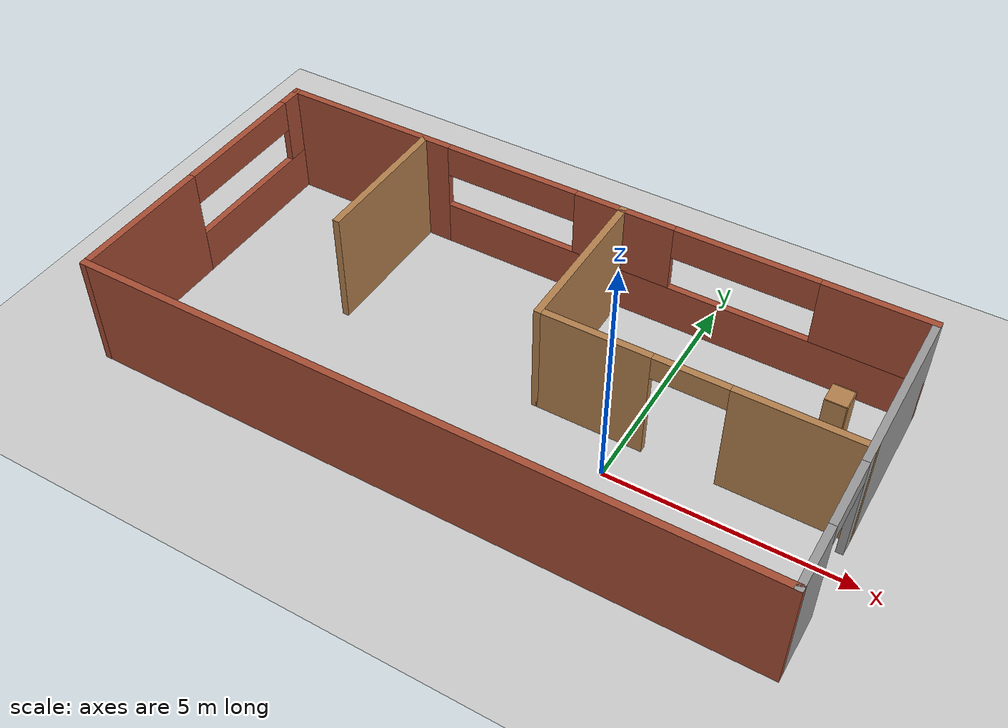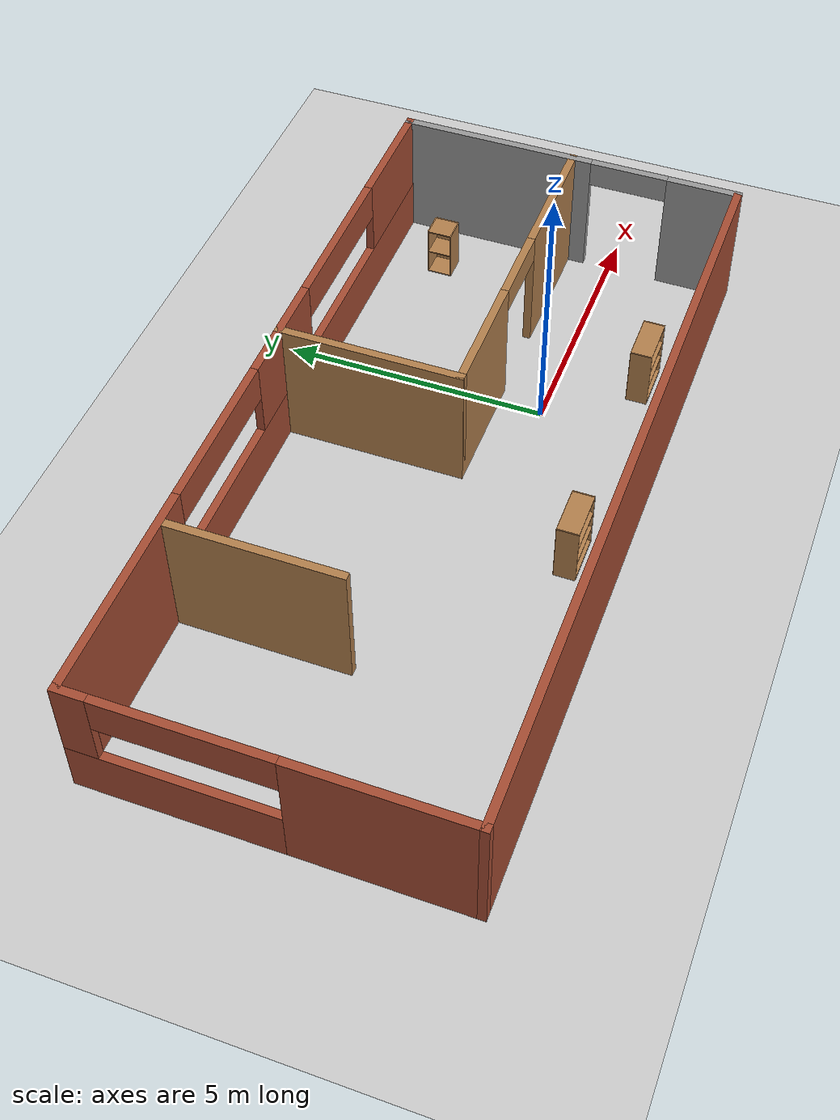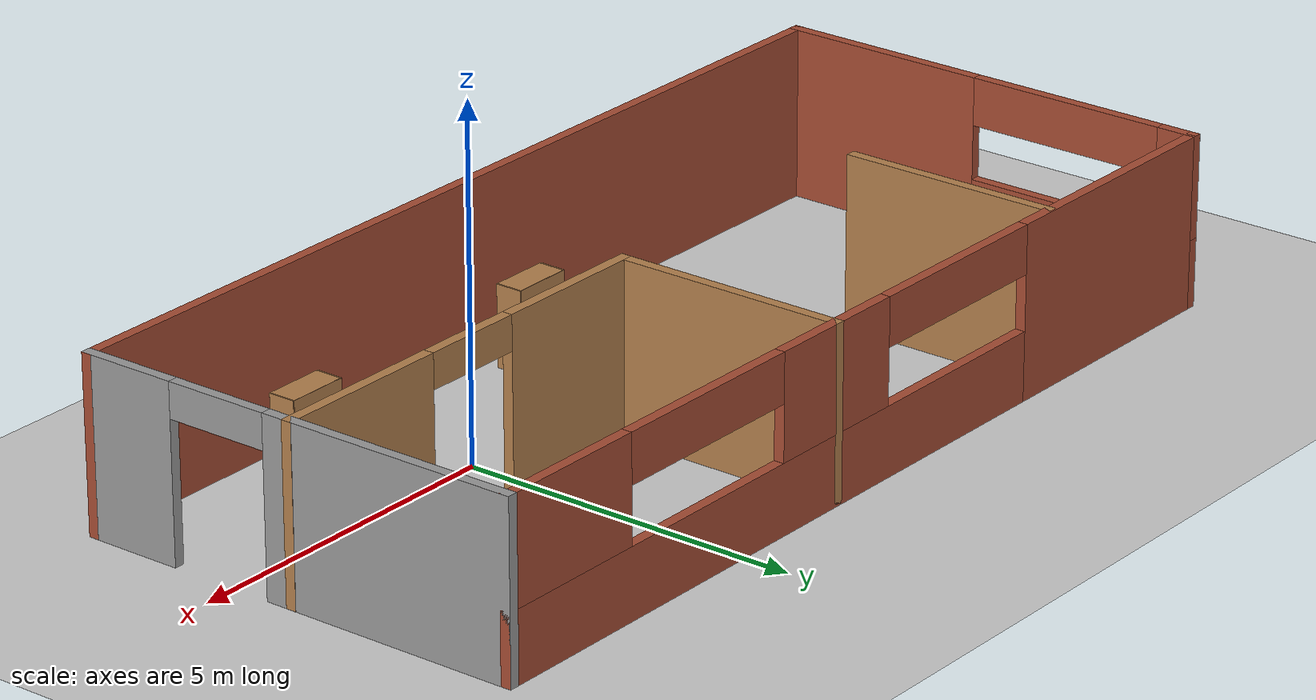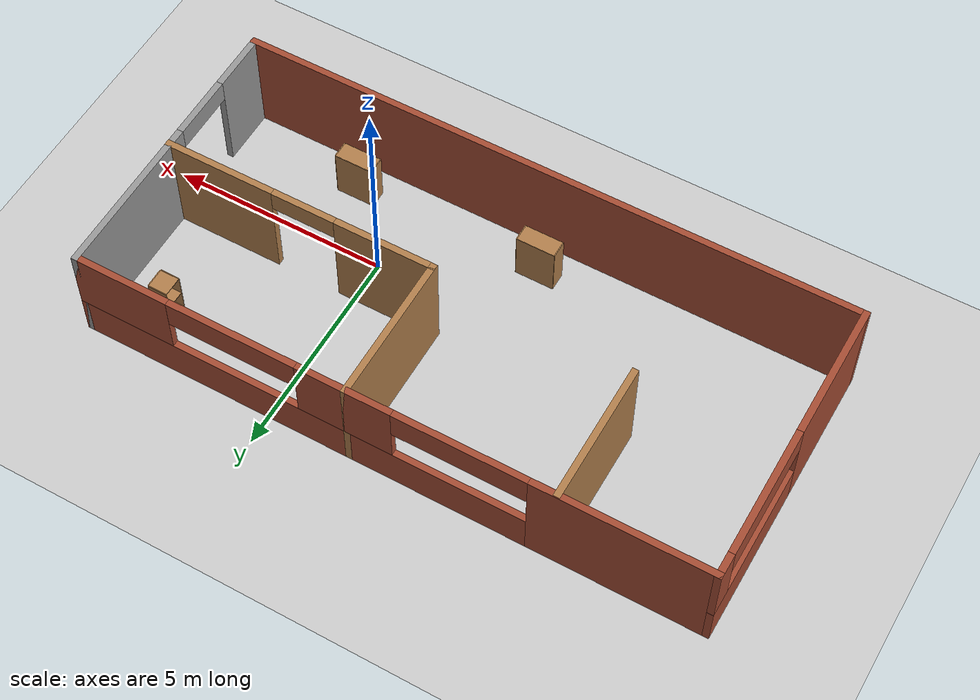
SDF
<sdf version="1.6">
 <world name="default">
  <light name="sun" type="directional">
   <pose>0 0 10 0 -0 0</pose>
   <diffuse>0.8 0.8 0.8 1</diffuse>
   <specular>0.2 0.2 0.2 1</specular>
   <attenuation>
    <range>1000</range>
    <constant>0.9</constant>
    <linear>0.01</linear>
    <quadratic>0.001</quadratic>
   </attenuation>
   <direction>-0.5 0.1 -0.9</direction>
  </light>
  <model name="ground_plane">
   <static>1</static>
   <link name="link">
    <collision name="collision">
     <geometry><plane><normal>0 0 1</normal><size>100 100</size></plane></geometry>
     <surface>
      <contact><collide_bitmask>65535</collide_bitmask></contact>
      <friction><ode><mu>100</mu><mu2>50</mu2></ode></friction>
     </surface>
    </collision>
    <visual name="visual">
     <cast_shadows>0</cast_shadows>
     <geometry><plane><normal>0 0 1</normal><size>100 100</size></plane></geometry>
     <material>
      <script><uri>file://media/materials/scripts/gazebo.material</uri><name>Gazebo/Grey</name></script>
     </material>
    </visual>
   </link>
  </model>
  <gravity>0 0 -9.8</gravity>
  <magnetic_field>6e-06 2.3e-05 -4.2e-05</magnetic_field>
  <atmosphere type="adiabatic"/>
  <physics name="default_physics" default="0" type="ode">
   <max_step_size>0.001</max_step_size>
   <real_time_factor>1</real_time_factor>
   <real_time_update_rate>1000</real_time_update_rate>
  </physics>
  <scene><ambient>0.4 0.4 0.4 1</ambient><background>0.7 0.7 0.7 1</background><shadows>1</shadows></scene>
  <spherical_coordinates>
   <surface_model>EARTH_WGS84</surface_model>
   <latitude_deg>0</latitude_deg>
   <longitude_deg>0</longitude_deg>
   <elevation>0</elevation>
   <heading_deg>0</heading_deg>
  </spherical_coordinates>
  <model name="MyBuilding1">
   <pose>-2.7482 0.962752 0 0 -0 0</pose>
   <link name="Wall_12">
    <pose>-0.001595 3.3 0 0 -0 0</pose>
    <visual name="Wall_12_Visual_0">
     <pose>-5.23309 0 1.25 0 -0 0</pose>
     <geometry><box><size>4.03382 0.15 2.5</size></box></geometry>
     <material>
      <script><uri>file://media/materials/scripts/gazebo.material</uri><name>Gazebo/Bricks</name></script>
      <ambient>1 1 1 1</ambient>
     </material>
     <meta><layer>0</layer></meta>
    </visual>
    <collision name="Wall_12_Collision_0">
     <geometry><box><size>4.03382 0.15 2.5</size></box></geometry>
     <pose>-5.23309 0 1.25 0 -0 0</pose>
    </collision>
    <visual name="Wall_12_Visual_1">
     <pose>2.01691 0 0.5 0 -0 0</pose>
     <geometry><box><size>10.4662 0.15 1</size></box></geometry>
     <material>
      <script><uri>file://media/materials/scripts/gazebo.material</uri><name>Gazebo/Bricks</name></script>
      <ambient>1 1 1 1</ambient>
     </material>
     <meta><layer>0</layer></meta>
    </visual>
    <collision name="Wall_12_Collision_1">
     <geometry><box><size>10.4662 0.15 1</size></box></geometry>
     <pose>2.01691 0 0.5 0 -0 0</pose>
    </collision>
    <visual name="Wall_12_Visual_2">
     <pose>0.874452 0 1.75 0 -0 0</pose>
     <geometry><box><size>2.18126 0.15 1.5</size></box></geometry>
     <material>
      <script><uri>file://media/materials/scripts/gazebo.material</uri><name>Gazebo/Bricks</name></script>
      <ambient>1 1 1 1</ambient>
     </material>
     <meta><layer>0</layer></meta>
    </visual>
    <collision name="Wall_12_Collision_2">
     <geometry><box><size>2.18126 0.15 1.5</size></box></geometry>
     <pose>0.874452 0 1.75 0 -0 0</pose>
    </collision>
    <visual name="Wall_12_Visual_3">
     <pose>6.10754 0 1.75 0 -0 0</pose>
     <geometry><box><size>2.28492 0.15 1.5</size></box></geometry>
     <material>
      <script><uri>file://media/materials/scripts/gazebo.material</uri><name>Gazebo/Bricks</name></script>
      <ambient>1 1 1 1</ambient>
     </material>
     <meta><layer>0</layer></meta>
    </visual>
    <collision name="Wall_12_Collision_3">
     <geometry><box><size>2.28492 0.15 1.5</size></box></geometry>
     <pose>6.10754 0 1.75 0 -0 0</pose>
    </collision>
    <visual name="Wall_12_Visual_4">
     <pose>-1.71618 0 2.15 0 -0 0</pose>
     <geometry><box><size>3 0.15 0.7</size></box></geometry>
     <material>
      <script><uri>file://media/materials/scripts/gazebo.material</uri><name>Gazebo/Bricks</name></script>
      <ambient>1 1 1 1</ambient>
     </material>
     <meta><layer>0</layer></meta>
    </visual>
    <collision name="Wall_12_Collision_4">
     <geometry><box><size>3 0.15 0.7</size></box></geometry>
     <pose>-1.71618 0 2.15 0 -0 0</pose>
    </collision>
    <visual name="Wall_12_Visual_5">
     <pose>3.46508 0 2.15 0 -0 0</pose>
     <geometry><box><size>3 0.15 0.7</size></box></geometry>
     <material>
      <script><uri>file://media/materials/scripts/gazebo.material</uri><name>Gazebo/Bricks</name></script>
      <ambient>1 1 1 1</ambient>
     </material>
     <meta><layer>0</layer></meta>
    </visual>
    <collision name="Wall_12_Collision_5">
     <geometry><box><size>3 0.15 0.7</size></box></geometry>
     <pose>3.46508 0 2.15 0 -0 0</pose>
    </collision>
   </link>
   <link name="Wall_13">
    <pose>7.1734 0 0 0 0 -1.5708</pose>
    <visual name="Wall_13_Visual_0">
     <pose>-1.46883 0 1.25 0 -0 0</pose>
     <geometry><box><size>3.81234 0.15 2.5</size></box></geometry>
     <material>
      <script><uri>file://media/materials/scripts/gazebo.material</uri><name>Gazebo/Grey</name></script>
      <ambient>1 1 1 1</ambient>
     </material>
     <meta><layer>0</layer></meta>
    </visual>
    <collision name="Wall_13_Collision_0">
     <geometry><box><size>3.81234 0.15 2.5</size></box></geometry>
     <pose>-1.46883 0 1.25 0 -0 0</pose>
    </collision>
    <visual name="Wall_13_Visual_1">
     <pose>2.65617 0 1.25 0 -0 0</pose>
     <geometry><box><size>1.43766 0.15 2.5</size></box></geometry>
     <material>
      <script><uri>file://media/materials/scripts/gazebo.material</uri><name>Gazebo/Grey</name></script>
      <ambient>1 1 1 1</ambient>
     </material>
     <meta><layer>0</layer></meta>
    </visual>
    <collision name="Wall_13_Collision_1">
     <geometry><box><size>1.43766 0.15 2.5</size></box></geometry>
     <pose>2.65617 0 1.25 0 -0 0</pose>
    </collision>
    <visual name="Wall_13_Visual_2">
     <pose>1.18734 0 2.25 0 -0 0</pose>
     <geometry><box><size>1.5 0.15 0.5</size></box></geometry>
     <material>
      <script><uri>file://media/materials/scripts/gazebo.material</uri><name>Gazebo/Grey</name></script>
      <ambient>1 1 1 1</ambient>
     </material>
     <meta><layer>0</layer></meta>
    </visual>
    <collision name="Wall_13_Collision_2">
     <geometry><box><size>1.5 0.15 0.5</size></box></geometry>
     <pose>1.18734 0 2.25 0 -0 0</pose>
    </collision>
   </link>
   <link name="Wall_14">
    <collision name="Wall_14_Collision">
     <geometry><box><size>14.5 0.15 2.5</size></box></geometry>
     <pose>0 0 1.25 0 -0 0</pose>
    </collision>
    <visual name="Wall_14_Visual">
     <pose>0 0 1.25 0 -0 0</pose>
     <geometry><box><size>14.5 0.15 2.5</size></box></geometry>
     <material>
      <script><uri>file://media/materials/scripts/gazebo.material</uri><name>Gazebo/Bricks</name></script>
      <ambient>1 1 1 1</ambient>
     </material>
     <meta><layer>0</layer></meta>
    </visual>
    <pose>-0.001595 -3.3 0 0 -0 3.14159</pose>
   </link>
   <link name="Wall_15">
    <pose>-7.17659 0 0 0 -0 1.5708</pose>
    <visual name="Wall_15_Visual_0">
     <pose>-1.79368 0 1.25 0 -0 0</pose>
     <geometry><box><size>3.16264 0.15 2.5</size></box></geometry>
     <material>
      <script><uri>file://media/materials/scripts/gazebo.material</uri><name>Gazebo/Bricks</name></script>
      <ambient>1 1 1 1</ambient>
     </material>
     <meta><layer>0</layer></meta>
    </visual>
    <collision name="Wall_15_Collision_0">
     <geometry><box><size>3.16264 0.15 2.5</size></box></geometry>
     <pose>-1.79368 0 1.25 0 -0 0</pose>
    </collision>
    <visual name="Wall_15_Visual_1">
     <pose>1.58132 0 0.5 0 -0 0</pose>
     <geometry><box><size>3.58736 0.15 1</size></box></geometry>
     <material>
      <script><uri>file://media/materials/scripts/gazebo.material</uri><name>Gazebo/Bricks</name></script>
      <ambient>1 1 1 1</ambient>
     </material>
     <meta><layer>0</layer></meta>
    </visual>
    <collision name="Wall_15_Collision_1">
     <geometry><box><size>3.58736 0.15 1</size></box></geometry>
     <pose>1.58132 0 0.5 0 -0 0</pose>
    </collision>
    <visual name="Wall_15_Visual_2">
     <pose>3.08132 0 1.75 0 -0 0</pose>
     <geometry><box><size>0.587363 0.15 1.5</size></box></geometry>
     <material>
      <script><uri>file://media/materials/scripts/gazebo.material</uri><name>Gazebo/Bricks</name></script>
      <ambient>1 1 1 1</ambient>
     </material>
     <meta><layer>0</layer></meta>
    </visual>
    <collision name="Wall_15_Collision_2">
     <geometry><box><size>0.587363 0.15 1.5</size></box></geometry>
     <pose>3.08132 0 1.75 0 -0 0</pose>
    </collision>
    <visual name="Wall_15_Visual_3">
     <pose>1.28764 0 2.15 0 -0 0</pose>
     <geometry><box><size>3 0.15 0.7</size></box></geometry>
     <material>
      <script><uri>file://media/materials/scripts/gazebo.material</uri><name>Gazebo/Bricks</name></script>
      <ambient>1 1 1 1</ambient>
     </material>
     <meta><layer>0</layer></meta>
    </visual>
    <collision name="Wall_15_Collision_3">
     <geometry><box><size>3 0.15 0.7</size></box></geometry>
     <pose>1.28764 0 2.15 0 -0 0</pose>
    </collision>
   </link>
   <link name="Wall_17">
    <collision name="Wall_17_Collision">
     <geometry><box><size>3.5 0.15 2.5</size></box></geometry>
     <pose>0 0 1.25 0 -0 0</pose>
    </collision>
    <visual name="Wall_17_Visual">
     <pose>0 0 1.25 0 -0 0</pose>
     <geometry><box><size>3.5 0.15 2.5</size></box></geometry>
     <material>
      <script><uri>file://media/materials/scripts/gazebo.material</uri><name>Gazebo/Wood</name></script>
      <ambient>1 1 1 1</ambient>
     </material>
     <meta><layer>0</layer></meta>
    </visual>
    <pose>0.826595 1.625 0 0 0 -1.5708</pose>
   </link>
   <link name="Wall_18">
    <pose>4.0016 -0.05 0 0 -0 0</pose>
    <visual name="Wall_18_Visual_0">
     <pose>-2.06088 0 1.25 0 -0 0</pose>
     <geometry><box><size>2.37824 0.15 2.5</size></box></geometry>
     <material>
      <script><uri>file://media/materials/scripts/gazebo.material</uri><name>Gazebo/Wood</name></script>
      <ambient>1 1 1 1</ambient>
     </material>
     <meta><layer>0</layer></meta>
    </visual>
    <collision name="Wall_18_Collision_0">
     <geometry><box><size>2.37824 0.15 2.5</size></box></geometry>
     <pose>-2.06088 0 1.25 0 -0 0</pose>
    </collision>
    <visual name="Wall_18_Visual_1">
     <pose>1.93912 0 1.25 0 -0 0</pose>
     <geometry><box><size>2.62176 0.15 2.5</size></box></geometry>
     <material>
      <script><uri>file://media/materials/scripts/gazebo.material</uri><name>Gazebo/Wood</name></script>
      <ambient>1 1 1 1</ambient>
     </material>
     <meta><layer>0</layer></meta>
    </visual>
    <collision name="Wall_18_Collision_1">
     <geometry><box><size>2.62176 0.15 2.5</size></box></geometry>
     <pose>1.93912 0 1.25 0 -0 0</pose>
    </collision>
    <visual name="Wall_18_Visual_2">
     <pose>-0.12176 0 2.25 0 -0 0</pose>
     <geometry><box><size>1.5 0.15 0.5</size></box></geometry>
     <material>
      <script><uri>file://media/materials/scripts/gazebo.material</uri><name>Gazebo/Wood</name></script>
      <ambient>1 1 1 1</ambient>
     </material>
     <meta><layer>0</layer></meta>
    </visual>
    <collision name="Wall_18_Collision_2">
     <geometry><box><size>1.5 0.15 0.5</size></box></geometry>
     <pose>-0.12176 0 2.25 0 -0 0</pose>
    </collision>
   </link>
   <link name="Wall_20">
    <collision name="Wall_20_Collision">
     <geometry><box><size>3.25 0.15 2.5</size></box></geometry>
     <pose>0 0 1.25 0 -0 0</pose>
    </collision>
    <visual name="Wall_20_Visual">
     <pose>0 0 1.25 0 -0 0</pose>
     <geometry><box><size>3.25 0.15 2.5</size></box></geometry>
     <material>
      <script><uri>file://media/materials/scripts/gazebo.material</uri><name>Gazebo/Wood</name></script>
      <ambient>1 1 1 1</ambient>
     </material>
     <meta><layer>0</layer></meta>
    </visual>
    <pose>-3.82266 1.72687 0 0 0 -1.5708</pose>
   </link>
   <static>1</static>
  </model>
  <model name="bookshelf">
   <static>1</static>
   <link name="link">
    <inertial><mass>1</mass></inertial>
    <collision name="back">
     <pose>0 0.005 0.6 0 -0 0</pose>
     <geometry><box><size>0.9 0.01 1.2</size></box></geometry>
    </collision>
    <visual name="visual1">
     <pose>0 0.005 0.6 0 -0 0</pose>
     <geometry><box><size>0.9 0.01 1.2</size></box></geometry>
     <material>
      <script><uri>file://media/materials/scripts/gazebo.material</uri><name>Gazebo/Wood</name></script>
     </material>
    </visual>
    <collision name="left_side">
     <pose>0.45 -0.195 0.6 0 -0 0</pose>
     <geometry><box><size>0.02 0.4 1.2</size></box></geometry>
    </collision>
    <visual name="visual2">
     <pose>0.45 -0.195 0.6 0 -0 0</pose>
     <geometry><box><size>0.02 0.4 1.2</size></box></geometry>
     <material>
      <script><uri>file://media/materials/scripts/gazebo.material</uri><name>Gazebo/Wood</name></script>
     </material>
    </visual>
    <collision name="right_side">
     <pose>-0.45 -0.195 0.6 0 -0 0</pose>
     <geometry><box><size>0.02 0.4 1.2</size></box></geometry>
    </collision>
    <visual name="visual3">
     <pose>-0.45 -0.195 0.6 0 -0 0</pose>
     <geometry><box><size>0.02 0.4 1.2</size></box></geometry>
     <material>
      <script><uri>file://media/materials/scripts/gazebo.material</uri><name>Gazebo/Wood</name></script>
     </material>
    </visual>
    <collision name="bottom">
     <pose>0 -0.195 0.03 0 -0 0</pose>
     <geometry><box><size>0.88 0.4 0.06</size></box></geometry>
    </collision>
    <visual name="visual4">
     <pose>0 -0.195 0.03 0 -0 0</pose>
     <geometry><box><size>0.88 0.4 0.06</size></box></geometry>
     <material>
      <script><uri>file://media/materials/scripts/gazebo.material</uri><name>Gazebo/Wood</name></script>
     </material>
    </visual>
    <collision name="top">
     <pose>0 -0.195 1.19 0 -0 0</pose>
     <geometry><box><size>0.88 0.4 0.02</size></box></geometry>
    </collision>
    <visual name="visual5">
     <pose>0 -0.195 1.19 0 -0 0</pose>
     <geometry><box><size>0.88 0.4 0.02</size></box></geometry>
     <material>
      <script><uri>file://media/materials/scripts/gazebo.material</uri><name>Gazebo/Wood</name></script>
     </material>
    </visual>
    <collision name="low_shelf">
     <pose>0 -0.195 0.43 0 -0 0</pose>
     <geometry><box><size>0.88 0.4 0.02</size></box></geometry>
    </collision>
    <visual name="visual6">
     <pose>0 -0.195 0.43 0 -0 0</pose>
     <geometry><box><size>0.88 0.4 0.02</size></box></geometry>
     <material>
      <script><uri>file://media/materials/scripts/gazebo.material</uri><name>Gazebo/Wood</name></script>
     </material>
    </visual>
    <collision name="high_shelf">
     <pose>0 -0.195 0.8 0 -0 0</pose>
     <geometry><box><size>0.88 0.4 0.02</size></box></geometry>
    </collision>
    <visual name="visual7">
     <pose>0 -0.195 0.8 0 -0 0</pose>
     <geometry><box><size>0.88 0.4 0.02</size></box></geometry>
     <material>
      <script><uri>file://media/materials/scripts/gazebo.material</uri><name>Gazebo/Wood</name></script>
     </material>
    </visual>
   </link>
   <pose>-3.06421 -1.35877 0 0 -0 0</pose>
  </model>
  <model name="bookshelf_0">
   <static>1</static>
   <link name="link">
    <inertial><mass>1</mass></inertial>
    <collision name="back">
     <pose>0 0.005 0.6 0 -0 0</pose>
     <geometry><box><size>0.9 0.01 1.2</size></box></geometry>
    </collision>
    <visual name="visual1">
     <pose>0 0.005 0.6 0 -0 0</pose>
     <geometry><box><size>0.9 0.01 1.2</size></box></geometry>
     <material>
      <script><uri>file://media/materials/scripts/gazebo.material</uri><name>Gazebo/Wood</name></script>
     </material>
    </visual>
    <collision name="left_side">
     <pose>0.45 -0.195 0.6 0 -0 0</pose>
     <geometry><box><size>0.02 0.4 1.2</size></box></geometry>
    </collision>
    <visual name="visual2">
     <pose>0.45 -0.195 0.6 0 -0 0</pose>
     <geometry><box><size>0.02 0.4 1.2</size></box></geometry>
     <material>
      <script><uri>file://media/materials/scripts/gazebo.material</uri><name>Gazebo/Wood</name></script>
     </material>
    </visual>
    <collision name="right_side">
     <pose>-0.45 -0.195 0.6 0 -0 0</pose>
     <geometry><box><size>0.02 0.4 1.2</size></box></geometry>
    </collision>
    <visual name="visual3">
     <pose>-0.45 -0.195 0.6 0 -0 0</pose>
     <geometry><box><size>0.02 0.4 1.2</size></box></geometry>
     <material>
      <script><uri>file://media/materials/scripts/gazebo.material</uri><name>Gazebo/Wood</name></script>
     </material>
    </visual>
    <collision name="bottom">
     <pose>0 -0.195 0.03 0 -0 0</pose>
     <geometry><box><size>0.88 0.4 0.06</size></box></geometry>
    </collision>
    <visual name="visual4">
     <pose>0 -0.195 0.03 0 -0 0</pose>
     <geometry><box><size>0.88 0.4 0.06</size></box></geometry>
     <material>
      <script><uri>file://media/materials/scripts/gazebo.material</uri><name>Gazebo/Wood</name></script>
     </material>
    </visual>
    <collision name="top">
     <pose>0 -0.195 1.19 0 -0 0</pose>
     <geometry><box><size>0.88 0.4 0.02</size></box></geometry>
    </collision>
    <visual name="visual5">
     <pose>0 -0.195 1.19 0 -0 0</pose>
     <geometry><box><size>0.88 0.4 0.02</size></box></geometry>
     <material>
      <script><uri>file://media/materials/scripts/gazebo.material</uri><name>Gazebo/Wood</name></script>
     </material>
    </visual>
    <collision name="low_shelf">
     <pose>0 -0.195 0.43 0 -0 0</pose>
     <geometry><box><size>0.88 0.4 0.02</size></box></geometry>
    </collision>
    <visual name="visual6">
     <pose>0 -0.195 0.43 0 -0 0</pose>
     <geometry><box><size>0.88 0.4 0.02</size></box></geometry>
     <material>
      <script><uri>file://media/materials/scripts/gazebo.material</uri><name>Gazebo/Wood</name></script>
     </material>
    </visual>
    <collision name="high_shelf">
     <pose>0 -0.195 0.8 0 -0 0</pose>
     <geometry><box><size>0.88 0.4 0.02</size></box></geometry>
    </collision>
    <visual name="visual7">
     <pose>0 -0.195 0.8 0 -0 0</pose>
     <geometry><box><size>0.88 0.4 0.02</size></box></geometry>
     <material>
      <script><uri>file://media/materials/scripts/gazebo.material</uri><name>Gazebo/Wood</name></script>
     </material>
    </visual>
   </link>
   <pose>1.39906 -1.35877 0 0 -0 0</pose>
  </model>
  <model name="cabinet">
   <static>1</static>
   <link name="cabinet_bottom_plate">
    <inertial>
     <pose>0 0 -1 0 -0 0</pose>
     <inertia><ixx>2.05</ixx><ixy>0</ixy><ixz>0</ixz><iyy>2.05</iyy><iyz>0</iyz><izz>2.05</izz></inertia>
     <mass>25</mass>
    </inertial>
    <collision name="cabinet_bottom_plate_geom">
     <pose>0 0 0.01 0 -0 0</pose>
     <geometry><box><size>0.45 0.45 0.02</size></box></geometry>
    </collision>
    <visual name="cabinet_bottom_plate_geom_visual">
     <pose>0 0 0.01 0 -0 0</pose>
     <geometry><box><size>0.45 0.45 0.02</size></box></geometry>
     <material>
      <script><uri>file://media/materials/scripts/gazebo.material</uri><name>Gazebo/Wood</name></script>
     </material>
    </visual>
    <collision name="cabinet_bottom_plate_geom_cabinet_back_plate">
     <pose>0.235 0 0.51 0 -0 0</pose>
     <geometry><box><size>0.02 0.45 1.02</size></box></geometry>
    </collision>
    <visual name="cabinet_bottom_plate_geom_cabinet_back_plate_visual">
     <pose>0.235 0 0.51 0 -0 0</pose>
     <geometry><box><size>0.02 0.45 1.02</size></box></geometry>
     <material>
      <script><uri>file://media/materials/scripts/gazebo.material</uri><name>Gazebo/Wood</name></script>
     </material>
    </visual>
    <collision name="cabinet_bottom_plate_geom_cabinet_left_plate">
     <pose>0 0.235 0.51 0 -0 0</pose>
     <geometry><box><size>0.45 0.02 1.02</size></box></geometry>
    </collision>
    <visual name="cabinet_bottom_plate_geom_cabinet_left_plate_visual">
     <pose>0 0.235 0.51 0 -0 0</pose>
     <geometry><box><size>0.45 0.02 1.02</size></box></geometry>
     <material>
      <script><uri>file://media/materials/scripts/gazebo.material</uri><name>Gazebo/Wood</name></script>
     </material>
    </visual>
    <collision name="cabinet_bottom_plate_geom_cabinet_middle_plate">
     <pose>0 0 0.51 0 -0 0</pose>
     <geometry><box><size>0.45 0.45 0.02</size></box></geometry>
    </collision>
    <visual name="cabinet_bottom_plate_geom_cabinet_middle_plate_visual">
     <pose>0 0 0.51 0 -0 0</pose>
     <geometry><box><size>0.45 0.45 0.02</size></box></geometry>
     <material>
      <script><uri>file://media/materials/scripts/gazebo.material</uri><name>Gazebo/Wood</name></script>
     </material>
    </visual>
    <collision name="cabinet_bottom_plate_geom_cabinet_right_plate">
     <pose>0 -0.235 0.51 0 -0 0</pose>
     <geometry><box><size>0.45 0.02 1.02</size></box></geometry>
    </collision>
    <visual name="cabinet_bottom_plate_geom_cabinet_right_plate_visual">
     <pose>0 -0.235 0.51 0 -0 0</pose>
     <geometry><box><size>0.45 0.02 1.02</size></box></geometry>
     <material>
      <script><uri>file://media/materials/scripts/gazebo.material</uri><name>Gazebo/Wood</name></script>
     </material>
    </visual>
    <collision name="cabinet_bottom_plate_geom_cabinet_top_plate">
     <pose>0 0 1.01 0 -0 0</pose>
     <geometry><box><size>0.45 0.45 0.02</size></box></geometry>
    </collision>
    <visual name="cabinet_bottom_plate_geom_cabinet_top_plate_visual">
     <pose>0 0 1.01 0 -0 0</pose>
     <geometry><box><size>0.45 0.45 0.02</size></box></geometry>
     <material>
      <script><uri>file://media/materials/scripts/gazebo.material</uri><name>Gazebo/Wood</name></script>
     </material>
    </visual>
   </link>
   <pose>3.27298 3.13875 0 0 -0 0</pose>
  </model>
 </world>
</sdf>
